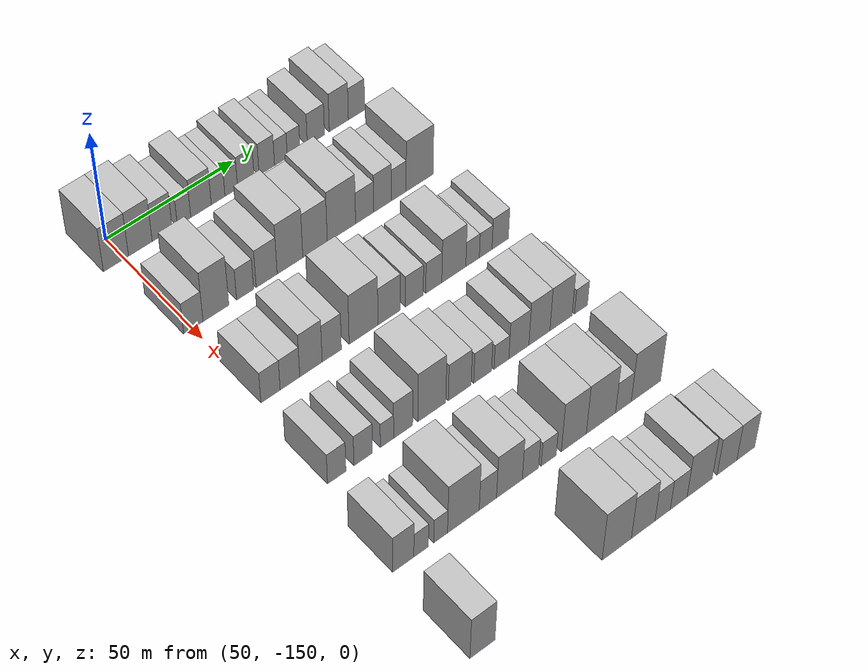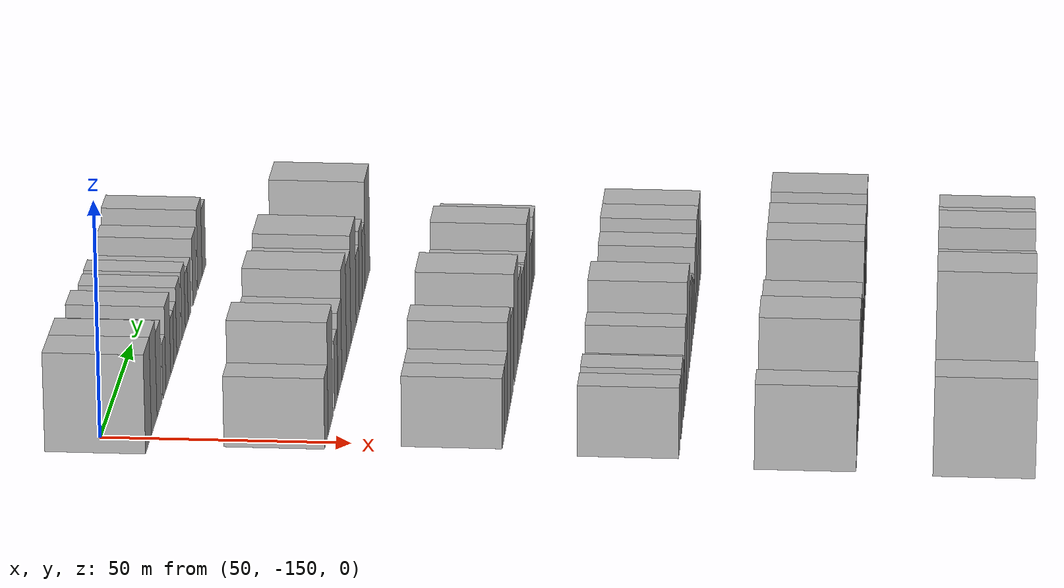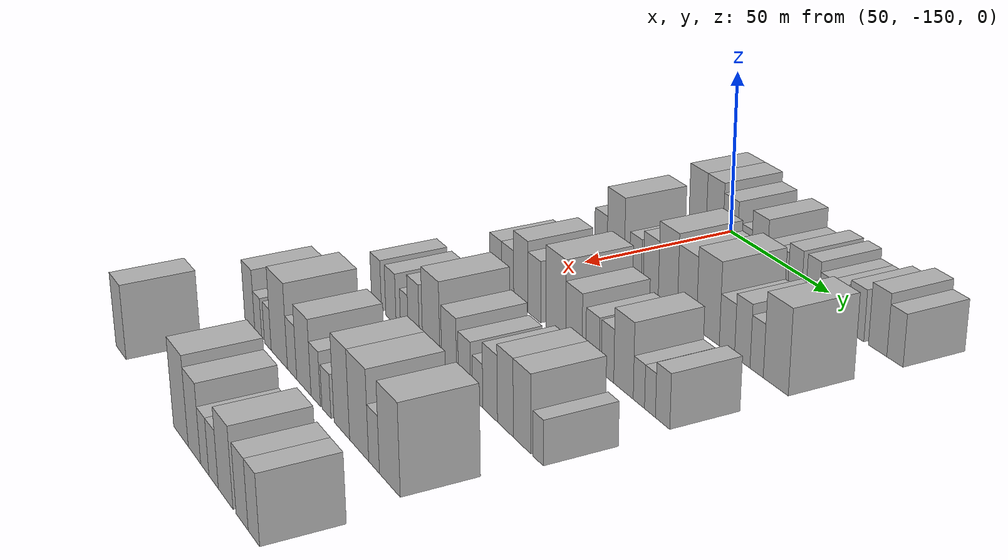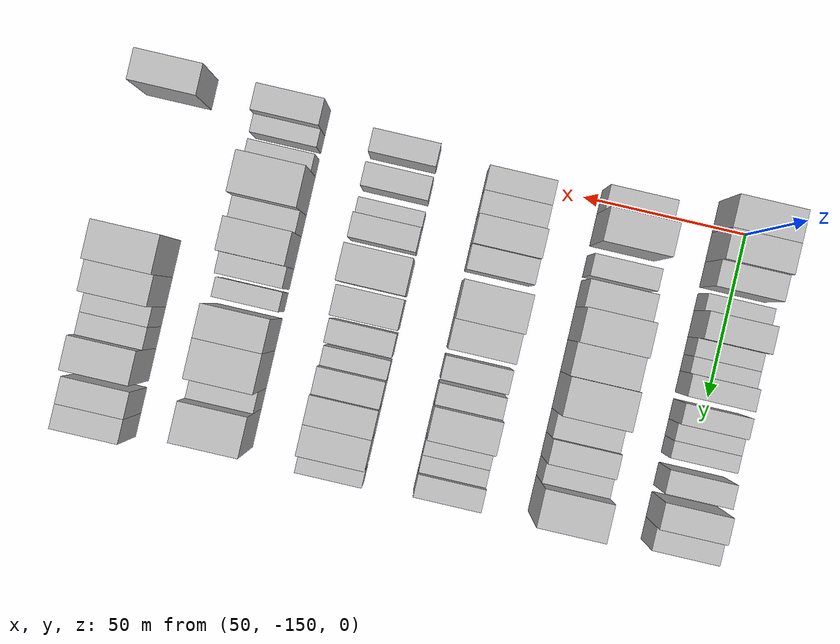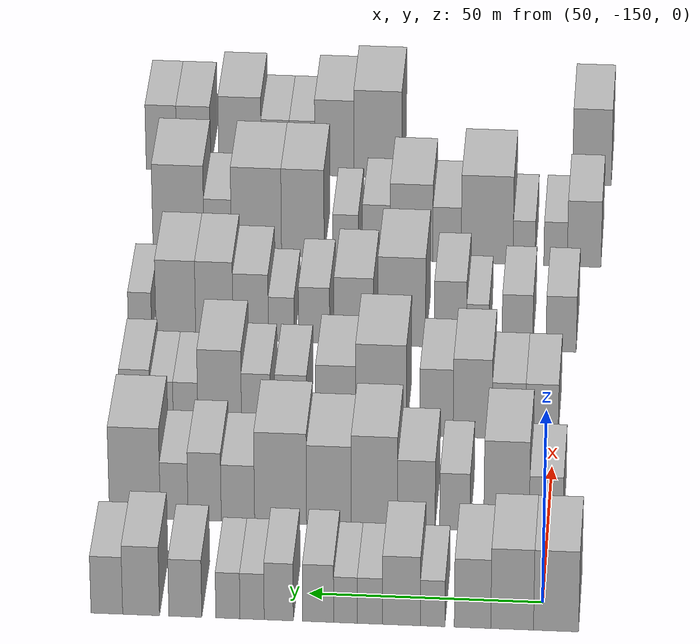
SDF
<sdf version="1.6">
 <world name="default">
  <model name="building_46">
   <static>1</static>
   <pose>50.0000 -153.2231 0 0.000000 0.000000 0.000000</pose>
   <link name="link">
    <pose>0 0 10.50 0 0 0</pose>
    <collision name="collision"><geometry><box><size>20.0000 9.5921 21.0000</size></box></geometry></collision>
    <visual name="visual">
     <cast_shadows>0</cast_shadows>
     <geometry><box><size>20.0000 9.5921 21.0000</size></box></geometry>
     <material>
      <script>
       <uri>model://HANNAS_wall/materials/scripts</uri>
       <uri>model://HANNAS_wall/materials/textures</uri>
       <name>vrc/HANNAS_wall</name>
      </script>
     </material>
    </visual>
   </link>
  </model>
  <model name="building_47">
   <static>1</static>
   <pose>50.0000 -143.8796 0 0.000000 0.000000 0.000000</pose>
   <link name="link">
    <pose>0 0 10.50 0 0 0</pose>
    <collision name="collision"><geometry><box><size>20.0000 9.0949 21.0000</size></box></geometry></collision>
    <visual name="visual">
     <cast_shadows>0</cast_shadows>
     <geometry><box><size>20.0000 9.0949 21.0000</size></box></geometry>
     <material>
      <script>
       <uri>model://HANNAS_wall/materials/scripts</uri>
       <uri>model://HANNAS_wall/materials/textures</uri>
       <name>vrc/HANNAS_wall</name>
      </script>
     </material>
    </visual>
   </link>
  </model>
  <model name="building_48">
   <static>1</static>
   <pose>50.0000 -135.4511 0 0.000000 0.000000 0.000000</pose>
   <link name="link">
    <pose>0 0 9.00 0 0 0</pose>
    <collision name="collision"><geometry><box><size>20.0000 7.7621 18.0000</size></box></geometry></collision>
    <visual name="visual">
     <cast_shadows>0</cast_shadows>
     <geometry><box><size>20.0000 7.7621 18.0000</size></box></geometry>
     <material>
      <script>
       <uri>model://HANNAS_wall/materials/scripts</uri>
       <uri>model://HANNAS_wall/materials/textures</uri>
       <name>vrc/HANNAS_wall</name>
      </script>
     </material>
    </visual>
   </link>
  </model>
  <model name="building_49">
   <static>1</static>
   <pose>50.0000 -126.9528 0 0.000000 0.000000 0.000000</pose>
   <link name="link">
    <pose>0 0 6.00 0 0 0</pose>
    <collision name="collision"><geometry><box><size>20.0000 5.2345 12.0000</size></box></geometry></collision>
    <visual name="visual">
     <cast_shadows>0</cast_shadows>
     <geometry><box><size>20.0000 5.2345 12.0000</size></box></geometry>
     <material>
      <script>
       <uri>model://HANNAS_wall/materials/scripts</uri>
       <uri>model://HANNAS_wall/materials/textures</uri>
       <name>vrc/HANNAS_wall</name>
      </script>
     </material>
    </visual>
   </link>
  </model>
  <model name="building_50">
   <static>1</static>
   <pose>50.0000 -120.3016 0 0.000000 0.000000 0.000000</pose>
   <link name="link">
    <pose>0 0 9.00 0 0 0</pose>
    <collision name="collision"><geometry><box><size>20.0000 8.0678 18.0000</size></box></geometry></collision>
    <visual name="visual">
     <cast_shadows>0</cast_shadows>
     <geometry><box><size>20.0000 8.0678 18.0000</size></box></geometry>
     <material>
      <script>
       <uri>model://HANNAS_wall/materials/scripts</uri>
       <uri>model://HANNAS_wall/materials/textures</uri>
       <name>vrc/HANNAS_wall</name>
      </script>
     </material>
    </visual>
   </link>
  </model>
  <model name="building_51">
   <static>1</static>
   <pose>50.0000 -113.5602 0 0.000000 0.000000 0.000000</pose>
   <link name="link">
    <pose>0 0 6.00 0 0 0</pose>
    <collision name="collision"><geometry><box><size>20.0000 5.4152 12.0000</size></box></geometry></collision>
    <visual name="visual">
     <cast_shadows>0</cast_shadows>
     <geometry><box><size>20.0000 5.4152 12.0000</size></box></geometry>
     <material>
      <script>
       <uri>model://HANNAS_wall/materials/scripts</uri>
       <uri>model://HANNAS_wall/materials/textures</uri>
       <name>vrc/HANNAS_wall</name>
      </script>
     </material>
    </visual>
   </link>
  </model>
  <model name="building_52">
   <static>1</static>
   <pose>50.0000 -108.3492 0 0.000000 0.000000 0.000000</pose>
   <link name="link">
    <pose>0 0 6.00 0 0 0</pose>
    <collision name="collision"><geometry><box><size>20.0000 5.0068 12.0000</size></box></geometry></collision>
    <visual name="visual">
     <cast_shadows>0</cast_shadows>
     <geometry><box><size>20.0000 5.0068 12.0000</size></box></geometry>
     <material>
      <script>
       <uri>model://HANNAS_wall/materials/scripts</uri>
       <uri>model://HANNAS_wall/materials/textures</uri>
       <name>vrc/HANNAS_wall</name>
      </script>
     </material>
    </visual>
   </link>
  </model>
  <model name="building_53">
   <static>1</static>
   <pose>50.0000 -102.5391 0 0.000000 0.000000 0.000000</pose>
   <link name="link">
    <pose>0 0 7.50 0 0 0</pose>
    <collision name="collision"><geometry><box><size>20.0000 6.6133 15.0000</size></box></geometry></collision>
    <visual name="visual">
     <cast_shadows>0</cast_shadows>
     <geometry><box><size>20.0000 6.6133 15.0000</size></box></geometry>
     <material>
      <script>
       <uri>model://HANNAS_wall/materials/scripts</uri>
       <uri>model://HANNAS_wall/materials/textures</uri>
       <name>vrc/HANNAS_wall</name>
      </script>
     </material>
    </visual>
   </link>
  </model>
  <model name="building_54">
   <static>1</static>
   <pose>50.0000 -94.1244 0 0.000000 0.000000 0.000000</pose>
   <link name="link">
    <pose>0 0 7.50 0 0 0</pose>
    <collision name="collision"><geometry><box><size>20.0000 6.2161 15.0000</size></box></geometry></collision>
    <visual name="visual">
     <cast_shadows>0</cast_shadows>
     <geometry><box><size>20.0000 6.2161 15.0000</size></box></geometry>
     <material>
      <script>
       <uri>model://HANNAS_wall/materials/scripts</uri>
       <uri>model://HANNAS_wall/materials/textures</uri>
       <name>vrc/HANNAS_wall</name>
      </script>
     </material>
    </visual>
   </link>
  </model>
  <model name="building_55">
   <static>1</static>
   <pose>50.0000 -88.4312 0 0.000000 0.000000 0.000000</pose>
   <link name="link">
    <pose>0 0 6.00 0 0 0</pose>
    <collision name="collision"><geometry><box><size>20.0000 5.1702 12.0000</size></box></geometry></collision>
    <visual name="visual">
     <cast_shadows>0</cast_shadows>
     <geometry><box><size>20.0000 5.1702 12.0000</size></box></geometry>
     <material>
      <script>
       <uri>model://HANNAS_wall/materials/scripts</uri>
       <uri>model://HANNAS_wall/materials/textures</uri>
       <name>vrc/HANNAS_wall</name>
      </script>
     </material>
    </visual>
   </link>
  </model>
  <model name="building_56">
   <static>1</static>
   <pose>50.0000 -83.2639 0 0.000000 0.000000 0.000000</pose>
   <link name="link">
    <pose>0 0 6.00 0 0 0</pose>
    <collision name="collision"><geometry><box><size>20.0000 5.1645 12.0000</size></box></geometry></collision>
    <visual name="visual">
     <cast_shadows>0</cast_shadows>
     <geometry><box><size>20.0000 5.1645 12.0000</size></box></geometry>
     <material>
      <script>
       <uri>model://HANNAS_wall/materials/scripts</uri>
       <uri>model://HANNAS_wall/materials/textures</uri>
       <name>vrc/HANNAS_wall</name>
      </script>
     </material>
    </visual>
   </link>
  </model>
  <model name="building_57">
   <static>1</static>
   <pose>50.0000 -74.1556 0 0.000000 0.000000 0.000000</pose>
   <link name="link">
    <pose>0 0 7.50 0 0 0</pose>
    <collision name="collision"><geometry><box><size>20.0000 7.0520 15.0000</size></box></geometry></collision>
    <visual name="visual">
     <cast_shadows>0</cast_shadows>
     <geometry><box><size>20.0000 7.0520 15.0000</size></box></geometry>
     <material>
      <script>
       <uri>model://HANNAS_wall/materials/scripts</uri>
       <uri>model://HANNAS_wall/materials/textures</uri>
       <name>vrc/HANNAS_wall</name>
      </script>
     </material>
    </visual>
   </link>
  </model>
  <model name="building_58">
   <static>1</static>
   <pose>50.0000 -64.6822 0 0.000000 0.000000 0.000000</pose>
   <link name="link">
    <pose>0 0 9.00 0 0 0</pose>
    <collision name="collision"><geometry><box><size>20.0000 7.8949 18.0000</size></box></geometry></collision>
    <visual name="visual">
     <cast_shadows>0</cast_shadows>
     <geometry><box><size>20.0000 7.8949 18.0000</size></box></geometry>
     <material>
      <script>
       <uri>model://HANNAS_wall/materials/scripts</uri>
       <uri>model://HANNAS_wall/materials/textures</uri>
       <name>vrc/HANNAS_wall</name>
      </script>
     </material>
    </visual>
   </link>
  </model>
  <model name="building_59">
   <static>1</static>
   <pose>50.0000 -57.3447 0 0.000000 0.000000 0.000000</pose>
   <link name="link">
    <pose>0 0 7.50 0 0 0</pose>
    <collision name="collision"><geometry><box><size>20.0000 6.7800 15.0000</size></box></geometry></collision>
    <visual name="visual">
     <cast_shadows>0</cast_shadows>
     <geometry><box><size>20.0000 6.7800 15.0000</size></box></geometry>
     <material>
      <script>
       <uri>model://HANNAS_wall/materials/scripts</uri>
       <uri>model://HANNAS_wall/materials/textures</uri>
       <name>vrc/HANNAS_wall</name>
      </script>
     </material>
    </visual>
   </link>
  </model>
  <model name="building_173">
   <static>1</static>
   <pose>85.0000 -149.6448 0 0.000000 0.000000 0.000000</pose>
   <link name="link">
    <pose>0 0 7.50 0 0 0</pose>
    <collision name="collision"><geometry><box><size>20.0000 7.3436 15.0000</size></box></geometry></collision>
    <visual name="visual">
     <cast_shadows>0</cast_shadows>
     <geometry><box><size>20.0000 7.3436 15.0000</size></box></geometry>
     <material>
      <script>
       <uri>model://HANNAS_wall/materials/scripts</uri>
       <uri>model://HANNAS_wall/materials/textures</uri>
       <name>vrc/HANNAS_wall</name>
      </script>
     </material>
    </visual>
   </link>
  </model>
  <model name="building_174">
   <static>1</static>
   <pose>85.0000 -141.0411 0 0.000000 0.000000 0.000000</pose>
   <link name="link">
    <pose>0 0 12.00 0 0 0</pose>
    <collision name="collision"><geometry><box><size>20.0000 9.8637 24.0000</size></box></geometry></collision>
    <visual name="visual">
     <cast_shadows>0</cast_shadows>
     <geometry><box><size>20.0000 9.8637 24.0000</size></box></geometry>
     <material>
      <script>
       <uri>model://HANNAS_wall/materials/scripts</uri>
       <uri>model://HANNAS_wall/materials/textures</uri>
       <name>vrc/HANNAS_wall</name>
      </script>
     </material>
    </visual>
   </link>
  </model>
  <model name="building_175">
   <static>1</static>
   <pose>85.0000 -129.8252 0 0.000000 0.000000 0.000000</pose>
   <link name="link">
    <pose>0 0 7.50 0 0 0</pose>
    <collision name="collision"><geometry><box><size>20.0000 6.5681 15.0000</size></box></geometry></collision>
    <visual name="visual">
     <cast_shadows>0</cast_shadows>
     <geometry><box><size>20.0000 6.5681 15.0000</size></box></geometry>
     <material>
      <script>
       <uri>model://HANNAS_wall/materials/scripts</uri>
       <uri>model://HANNAS_wall/materials/textures</uri>
       <name>vrc/HANNAS_wall</name>
      </script>
     </material>
    </visual>
   </link>
  </model>
  <model name="building_176">
   <static>1</static>
   <pose>85.0000 -121.4539 0 0.000000 0.000000 0.000000</pose>
   <link name="link">
    <pose>0 0 9.00 0 0 0</pose>
    <collision name="collision"><geometry><box><size>20.0000 8.1746 18.0000</size></box></geometry></collision>
    <visual name="visual">
     <cast_shadows>0</cast_shadows>
     <geometry><box><size>20.0000 8.1746 18.0000</size></box></geometry>
     <material>
      <script>
       <uri>model://HANNAS_wall/materials/scripts</uri>
       <uri>model://HANNAS_wall/materials/textures</uri>
       <name>vrc/HANNAS_wall</name>
      </script>
     </material>
    </visual>
   </link>
  </model>
  <model name="building_177">
   <static>1</static>
   <pose>85.0000 -112.3186 0 0.000000 0.000000 0.000000</pose>
   <link name="link">
    <pose>0 0 12.00 0 0 0</pose>
    <collision name="collision"><geometry><box><size>20.0000 10.0960 24.0000</size></box></geometry></collision>
    <visual name="visual">
     <cast_shadows>0</cast_shadows>
     <geometry><box><size>20.0000 10.0960 24.0000</size></box></geometry>
     <material>
      <script>
       <uri>model://HANNAS_wall/materials/scripts</uri>
       <uri>model://HANNAS_wall/materials/textures</uri>
       <name>vrc/HANNAS_wall</name>
      </script>
     </material>
    </visual>
   </link>
  </model>
  <model name="building_178">
   <static>1</static>
   <pose>85.0000 -102.4097 0 0.000000 0.000000 0.000000</pose>
   <link name="link">
    <pose>0 0 10.50 0 0 0</pose>
    <collision name="collision"><geometry><box><size>20.0000 9.7217 21.0000</size></box></geometry></collision>
    <visual name="visual">
     <cast_shadows>0</cast_shadows>
     <geometry><box><size>20.0000 9.7217 21.0000</size></box></geometry>
     <material>
      <script>
       <uri>model://HANNAS_wall/materials/scripts</uri>
       <uri>model://HANNAS_wall/materials/textures</uri>
       <name>vrc/HANNAS_wall</name>
      </script>
     </material>
    </visual>
   </link>
  </model>
  <model name="building_179">
   <static>1</static>
   <pose>85.0000 -91.8756 0 0.000000 0.000000 0.000000</pose>
   <link name="link">
    <pose>0 0 12.00 0 0 0</pose>
    <collision name="collision"><geometry><box><size>20.0000 11.3465 24.0000</size></box></geometry></collision>
    <visual name="visual">
     <cast_shadows>0</cast_shadows>
     <geometry><box><size>20.0000 11.3465 24.0000</size></box></geometry>
     <material>
      <script>
       <uri>model://HANNAS_wall/materials/scripts</uri>
       <uri>model://HANNAS_wall/materials/textures</uri>
       <name>vrc/HANNAS_wall</name>
      </script>
     </material>
    </visual>
   </link>
  </model>
  <model name="building_180">
   <static>1</static>
   <pose>85.0000 -82.5604 0 0.000000 0.000000 0.000000</pose>
   <link name="link">
    <pose>0 0 7.50 0 0 0</pose>
    <collision name="collision"><geometry><box><size>20.0000 7.2840 15.0000</size></box></geometry></collision>
    <visual name="visual">
     <cast_shadows>0</cast_shadows>
     <geometry><box><size>20.0000 7.2840 15.0000</size></box></geometry>
     <material>
      <script>
       <uri>model://HANNAS_wall/materials/scripts</uri>
       <uri>model://HANNAS_wall/materials/textures</uri>
       <name>vrc/HANNAS_wall</name>
      </script>
     </material>
    </visual>
   </link>
  </model>
  <model name="building_181">
   <static>1</static>
   <pose>85.0000 -75.2940 0 0.000000 0.000000 0.000000</pose>
   <link name="link">
    <pose>0 0 9.00 0 0 0</pose>
    <collision name="collision"><geometry><box><size>20.0000 7.2488 18.0000</size></box></geometry></collision>
    <visual name="visual">
     <cast_shadows>0</cast_shadows>
     <geometry><box><size>20.0000 7.2488 18.0000</size></box></geometry>
     <material>
      <script>
       <uri>model://HANNAS_wall/materials/scripts</uri>
       <uri>model://HANNAS_wall/materials/textures</uri>
       <name>vrc/HANNAS_wall</name>
      </script>
     </material>
    </visual>
   </link>
  </model>
  <model name="building_182">
   <static>1</static>
   <pose>85.0000 -68.6359 0 0.000000 0.000000 0.000000</pose>
   <link name="link">
    <pose>0 0 7.50 0 0 0</pose>
    <collision name="collision"><geometry><box><size>20.0000 6.0674 15.0000</size></box></geometry></collision>
    <visual name="visual">
     <cast_shadows>0</cast_shadows>
     <geometry><box><size>20.0000 6.0674 15.0000</size></box></geometry>
     <material>
      <script>
       <uri>model://HANNAS_wall/materials/scripts</uri>
       <uri>model://HANNAS_wall/materials/textures</uri>
       <name>vrc/HANNAS_wall</name>
      </script>
     </material>
    </visual>
   </link>
  </model>
  <model name="building_183">
   <static>1</static>
   <pose>85.0000 -60.0396 0 0.000000 0.000000 0.000000</pose>
   <link name="link">
    <pose>0 0 12.00 0 0 0</pose>
    <collision name="collision"><geometry><box><size>20.0000 11.1253 24.0000</size></box></geometry></collision>
    <visual name="visual">
     <cast_shadows>0</cast_shadows>
     <geometry><box><size>20.0000 11.1253 24.0000</size></box></geometry>
     <material>
      <script>
       <uri>model://HANNAS_wall/materials/scripts</uri>
       <uri>model://HANNAS_wall/materials/textures</uri>
       <name>vrc/HANNAS_wall</name>
      </script>
     </material>
    </visual>
   </link>
  </model>
  <model name="building_298">
   <static>1</static>
   <pose>120.0000 -147.2868 0 0.000000 0.000000 0.000000</pose>
   <link name="link">
    <pose>0 0 7.50 0 0 0</pose>
    <collision name="collision"><geometry><box><size>20.0000 7.2718 15.0000</size></box></geometry></collision>
    <visual name="visual">
     <cast_shadows>0</cast_shadows>
     <geometry><box><size>20.0000 7.2718 15.0000</size></box></geometry>
     <material>
      <script>
       <uri>model://HANNAS_wall/materials/scripts</uri>
       <uri>model://HANNAS_wall/materials/textures</uri>
       <name>vrc/HANNAS_wall</name>
      </script>
     </material>
    </visual>
   </link>
  </model>
  <model name="building_299">
   <static>1</static>
   <pose>120.0000 -139.9324 0 0.000000 0.000000 0.000000</pose>
   <link name="link">
    <pose>0 0 7.50 0 0 0</pose>
    <collision name="collision"><geometry><box><size>20.0000 7.4371 15.0000</size></box></geometry></collision>
    <visual name="visual">
     <cast_shadows>0</cast_shadows>
     <geometry><box><size>20.0000 7.4371 15.0000</size></box></geometry>
     <material>
      <script>
       <uri>model://HANNAS_wall/materials/scripts</uri>
       <uri>model://HANNAS_wall/materials/textures</uri>
       <name>vrc/HANNAS_wall</name>
      </script>
     </material>
    </visual>
   </link>
  </model>
  <model name="building_300">
   <static>1</static>
   <pose>120.0000 -131.9129 0 0.000000 0.000000 0.000000</pose>
   <link name="link">
    <pose>0 0 10.50 0 0 0</pose>
    <collision name="collision"><geometry><box><size>20.0000 8.6019 21.0000</size></box></geometry></collision>
    <visual name="visual">
     <cast_shadows>0</cast_shadows>
     <geometry><box><size>20.0000 8.6019 21.0000</size></box></geometry>
     <material>
      <script>
       <uri>model://HANNAS_wall/materials/scripts</uri>
       <uri>model://HANNAS_wall/materials/textures</uri>
       <name>vrc/HANNAS_wall</name>
      </script>
     </material>
    </visual>
   </link>
  </model>
  <model name="building_301">
   <static>1</static>
   <pose>120.0000 -123.8991 0 0.000000 0.000000 0.000000</pose>
   <link name="link">
    <pose>0 0 9.00 0 0 0</pose>
    <collision name="collision"><geometry><box><size>20.0000 7.4257 18.0000</size></box></geometry></collision>
    <visual name="visual">
     <cast_shadows>0</cast_shadows>
     <geometry><box><size>20.0000 7.4257 18.0000</size></box></geometry>
     <material>
      <script>
       <uri>model://HANNAS_wall/materials/scripts</uri>
       <uri>model://HANNAS_wall/materials/textures</uri>
       <name>vrc/HANNAS_wall</name>
      </script>
     </material>
    </visual>
   </link>
  </model>
  <model name="building_302">
   <static>1</static>
   <pose>120.0000 -111.5586 0 0.000000 0.000000 0.000000</pose>
   <link name="link">
    <pose>0 0 12.00 0 0 0</pose>
    <collision name="collision"><geometry><box><size>20.0000 11.2554 24.0000</size></box></geometry></collision>
    <visual name="visual">
     <cast_shadows>0</cast_shadows>
     <geometry><box><size>20.0000 11.2554 24.0000</size></box></geometry>
     <material>
      <script>
       <uri>model://HANNAS_wall/materials/scripts</uri>
       <uri>model://HANNAS_wall/materials/textures</uri>
       <name>vrc/HANNAS_wall</name>
      </script>
     </material>
    </visual>
   </link>
  </model>
  <model name="building_303">
   <static>1</static>
   <pose>120.0000 -101.4931 0 0.000000 0.000000 0.000000</pose>
   <link name="link">
    <pose>0 0 9.00 0 0 0</pose>
    <collision name="collision"><geometry><box><size>20.0000 8.8756 18.0000</size></box></geometry></collision>
    <visual name="visual">
     <cast_shadows>0</cast_shadows>
     <geometry><box><size>20.0000 8.8756 18.0000</size></box></geometry>
     <material>
      <script>
       <uri>model://HANNAS_wall/materials/scripts</uri>
       <uri>model://HANNAS_wall/materials/textures</uri>
       <name>vrc/HANNAS_wall</name>
      </script>
     </material>
    </visual>
   </link>
  </model>
  <model name="building_304">
   <static>1</static>
   <pose>120.0000 -91.5124 0 0.000000 0.000000 0.000000</pose>
   <link name="link">
    <pose>0 0 7.50 0 0 0</pose>
    <collision name="collision"><geometry><box><size>20.0000 7.0858 15.0000</size></box></geometry></collision>
    <visual name="visual">
     <cast_shadows>0</cast_shadows>
     <geometry><box><size>20.0000 7.0858 15.0000</size></box></geometry>
     <material>
      <script>
       <uri>model://HANNAS_wall/materials/scripts</uri>
       <uri>model://HANNAS_wall/materials/textures</uri>
       <name>vrc/HANNAS_wall</name>
      </script>
     </material>
    </visual>
   </link>
  </model>
  <model name="building_305">
   <static>1</static>
   <pose>120.0000 -83.7449 0 0.000000 0.000000 0.000000</pose>
   <link name="link">
    <pose>0 0 7.50 0 0 0</pose>
    <collision name="collision"><geometry><box><size>20.0000 6.4491 15.0000</size></box></geometry></collision>
    <visual name="visual">
     <cast_shadows>0</cast_shadows>
     <geometry><box><size>20.0000 6.4491 15.0000</size></box></geometry>
     <material>
      <script>
       <uri>model://HANNAS_wall/materials/scripts</uri>
       <uri>model://HANNAS_wall/materials/textures</uri>
       <name>vrc/HANNAS_wall</name>
      </script>
     </material>
    </visual>
   </link>
  </model>
  <model name="building_306">
   <static>1</static>
   <pose>120.0000 -75.6520 0 0.000000 0.000000 0.000000</pose>
   <link name="link">
    <pose>0 0 10.50 0 0 0</pose>
    <collision name="collision"><geometry><box><size>20.0000 9.7367 21.0000</size></box></geometry></collision>
    <visual name="visual">
     <cast_shadows>0</cast_shadows>
     <geometry><box><size>20.0000 9.7367 21.0000</size></box></geometry>
     <material>
      <script>
       <uri>model://HANNAS_wall/materials/scripts</uri>
       <uri>model://HANNAS_wall/materials/textures</uri>
       <name>vrc/HANNAS_wall</name>
      </script>
     </material>
    </visual>
   </link>
  </model>
  <model name="building_307">
   <static>1</static>
   <pose>120.0000 -68.0322 0 0.000000 0.000000 0.000000</pose>
   <link name="link">
    <pose>0 0 6.00 0 0 0</pose>
    <collision name="collision"><geometry><box><size>20.0000 5.5030 12.0000</size></box></geometry></collision>
    <visual name="visual">
     <cast_shadows>0</cast_shadows>
     <geometry><box><size>20.0000 5.5030 12.0000</size></box></geometry>
     <material>
      <script>
       <uri>model://HANNAS_wall/materials/scripts</uri>
       <uri>model://HANNAS_wall/materials/textures</uri>
       <name>vrc/HANNAS_wall</name>
      </script>
     </material>
    </visual>
   </link>
  </model>
  <model name="building_308">
   <static>1</static>
   <pose>120.0000 -62.6818 0 0.000000 0.000000 0.000000</pose>
   <link name="link">
    <pose>0 0 6.00 0 0 0</pose>
    <collision name="collision"><geometry><box><size>20.0000 5.1977 12.0000</size></box></geometry></collision>
    <visual name="visual">
     <cast_shadows>0</cast_shadows>
     <geometry><box><size>20.0000 5.1977 12.0000</size></box></geometry>
     <material>
      <script>
       <uri>model://HANNAS_wall/materials/scripts</uri>
       <uri>model://HANNAS_wall/materials/textures</uri>
       <name>vrc/HANNAS_wall</name>
      </script>
     </material>
    </visual>
   </link>
  </model>
  <model name="building_309">
   <static>1</static>
   <pose>120.0000 -56.7090 0 0.000000 0.000000 0.000000</pose>
   <link name="link">
    <pose>0 0 7.50 0 0 0</pose>
    <collision name="collision"><geometry><box><size>20.0000 6.7481 15.0000</size></box></geometry></collision>
    <visual name="visual">
     <cast_shadows>0</cast_shadows>
     <geometry><box><size>20.0000 6.7481 15.0000</size></box></geometry>
     <material>
      <script>
       <uri>model://HANNAS_wall/materials/scripts</uri>
       <uri>model://HANNAS_wall/materials/textures</uri>
       <name>vrc/HANNAS_wall</name>
      </script>
     </material>
    </visual>
   </link>
  </model>
  <model name="building_421">
   <static>1</static>
   <pose>155.0000 -150.2402 0 0.000000 0.000000 0.000000</pose>
   <link name="link">
    <pose>0 0 7.50 0 0 0</pose>
    <collision name="collision"><geometry><box><size>20.0000 6.8778 15.0000</size></box></geometry></collision>
    <visual name="visual">
     <cast_shadows>0</cast_shadows>
     <geometry><box><size>20.0000 6.8778 15.0000</size></box></geometry>
     <material>
      <script>
       <uri>model://HANNAS_wall/materials/scripts</uri>
       <uri>model://HANNAS_wall/materials/textures</uri>
       <name>vrc/HANNAS_wall</name>
      </script>
     </material>
    </visual>
   </link>
  </model>
  <model name="building_422">
   <static>1</static>
   <pose>155.0000 -140.3167 0 0.000000 0.000000 0.000000</pose>
   <link name="link">
    <pose>0 0 7.50 0 0 0</pose>
    <collision name="collision"><geometry><box><size>20.0000 6.9691 15.0000</size></box></geometry></collision>
    <visual name="visual">
     <cast_shadows>0</cast_shadows>
     <geometry><box><size>20.0000 6.9691 15.0000</size></box></geometry>
     <material>
      <script>
       <uri>model://HANNAS_wall/materials/scripts</uri>
       <uri>model://HANNAS_wall/materials/textures</uri>
       <name>vrc/HANNAS_wall</name>
      </script>
     </material>
    </visual>
   </link>
  </model>
  <model name="building_423">
   <static>1</static>
   <pose>155.0000 -131.3008 0 0.000000 0.000000 0.000000</pose>
   <link name="link">
    <pose>0 0 6.00 0 0 0</pose>
    <collision name="collision"><geometry><box><size>20.0000 5.0627 12.0000</size></box></geometry></collision>
    <visual name="visual">
     <cast_shadows>0</cast_shadows>
     <geometry><box><size>20.0000 5.0627 12.0000</size></box></geometry>
     <material>
      <script>
       <uri>model://HANNAS_wall/materials/scripts</uri>
       <uri>model://HANNAS_wall/materials/textures</uri>
       <name>vrc/HANNAS_wall</name>
      </script>
     </material>
    </visual>
   </link>
  </model>
  <model name="building_424">
   <static>1</static>
   <pose>155.0000 -125.1274 0 0.000000 0.000000 0.000000</pose>
   <link name="link">
    <pose>0 0 9.00 0 0 0</pose>
    <collision name="collision"><geometry><box><size>20.0000 7.2842 18.0000</size></box></geometry></collision>
    <visual name="visual">
     <cast_shadows>0</cast_shadows>
     <geometry><box><size>20.0000 7.2842 18.0000</size></box></geometry>
     <material>
      <script>
       <uri>model://HANNAS_wall/materials/scripts</uri>
       <uri>model://HANNAS_wall/materials/textures</uri>
       <name>vrc/HANNAS_wall</name>
      </script>
     </material>
    </visual>
   </link>
  </model>
  <model name="building_425">
   <static>1</static>
   <pose>155.0000 -114.0852 0 0.000000 0.000000 0.000000</pose>
   <link name="link">
    <pose>0 0 12.00 0 0 0</pose>
    <collision name="collision"><geometry><box><size>20.0000 10.8000 24.0000</size></box></geometry></collision>
    <visual name="visual">
     <cast_shadows>0</cast_shadows>
     <geometry><box><size>20.0000 10.8000 24.0000</size></box></geometry>
     <material>
      <script>
       <uri>model://HANNAS_wall/materials/scripts</uri>
       <uri>model://HANNAS_wall/materials/textures</uri>
       <name>vrc/HANNAS_wall</name>
      </script>
     </material>
    </visual>
   </link>
  </model>
  <model name="building_426">
   <static>1</static>
   <pose>155.0000 -103.2085 0 0.000000 0.000000 0.000000</pose>
   <link name="link">
    <pose>0 0 9.00 0 0 0</pose>
    <collision name="collision"><geometry><box><size>20.0000 8.9534 18.0000</size></box></geometry></collision>
    <visual name="visual">
     <cast_shadows>0</cast_shadows>
     <geometry><box><size>20.0000 8.9534 18.0000</size></box></geometry>
     <material>
      <script>
       <uri>model://HANNAS_wall/materials/scripts</uri>
       <uri>model://HANNAS_wall/materials/textures</uri>
       <name>vrc/HANNAS_wall</name>
      </script>
     </material>
    </visual>
   </link>
  </model>
  <model name="building_427">
   <static>1</static>
   <pose>155.0000 -94.1930 0 0.000000 0.000000 0.000000</pose>
   <link name="link">
    <pose>0 0 7.50 0 0 0</pose>
    <collision name="collision"><geometry><box><size>20.0000 7.0775 15.0000</size></box></geometry></collision>
    <visual name="visual">
     <cast_shadows>0</cast_shadows>
     <geometry><box><size>20.0000 7.0775 15.0000</size></box></geometry>
     <material>
      <script>
       <uri>model://HANNAS_wall/materials/scripts</uri>
       <uri>model://HANNAS_wall/materials/textures</uri>
       <name>vrc/HANNAS_wall</name>
      </script>
     </material>
    </visual>
   </link>
  </model>
  <model name="building_428">
   <static>1</static>
   <pose>155.0000 -86.7264 0 0.000000 0.000000 0.000000</pose>
   <link name="link">
    <pose>0 0 6.00 0 0 0</pose>
    <collision name="collision"><geometry><box><size>20.0000 5.8557 12.0000</size></box></geometry></collision>
    <visual name="visual">
     <cast_shadows>0</cast_shadows>
     <geometry><box><size>20.0000 5.8557 12.0000</size></box></geometry>
     <material>
      <script>
       <uri>model://HANNAS_wall/materials/scripts</uri>
       <uri>model://HANNAS_wall/materials/textures</uri>
       <name>vrc/HANNAS_wall</name>
      </script>
     </material>
    </visual>
   </link>
  </model>
  <model name="building_429">
   <static>1</static>
   <pose>155.0000 -79.7750 0 0.000000 0.000000 0.000000</pose>
   <link name="link">
    <pose>0 0 9.00 0 0 0</pose>
    <collision name="collision"><geometry><box><size>20.0000 8.0472 18.0000</size></box></geometry></collision>
    <visual name="visual">
     <cast_shadows>0</cast_shadows>
     <geometry><box><size>20.0000 8.0472 18.0000</size></box></geometry>
     <material>
      <script>
       <uri>model://HANNAS_wall/materials/scripts</uri>
       <uri>model://HANNAS_wall/materials/textures</uri>
       <name>vrc/HANNAS_wall</name>
      </script>
     </material>
    </visual>
   </link>
  </model>
  <model name="building_430">
   <static>1</static>
   <pose>155.0000 -71.4947 0 0.000000 0.000000 0.000000</pose>
   <link name="link">
    <pose>0 0 10.50 0 0 0</pose>
    <collision name="collision"><geometry><box><size>20.0000 8.5134 21.0000</size></box></geometry></collision>
    <visual name="visual">
     <cast_shadows>0</cast_shadows>
     <geometry><box><size>20.0000 8.5134 21.0000</size></box></geometry>
     <material>
      <script>
       <uri>model://HANNAS_wall/materials/scripts</uri>
       <uri>model://HANNAS_wall/materials/textures</uri>
       <name>vrc/HANNAS_wall</name>
      </script>
     </material>
    </visual>
   </link>
  </model>
  <model name="building_431">
   <static>1</static>
   <pose>155.0000 -62.7119 0 0.000000 0.000000 0.000000</pose>
   <link name="link">
    <pose>0 0 10.50 0 0 0</pose>
    <collision name="collision"><geometry><box><size>20.0000 9.0521 21.0000</size></box></geometry></collision>
    <visual name="visual">
     <cast_shadows>0</cast_shadows>
     <geometry><box><size>20.0000 9.0521 21.0000</size></box></geometry>
     <material>
      <script>
       <uri>model://HANNAS_wall/materials/scripts</uri>
       <uri>model://HANNAS_wall/materials/textures</uri>
       <name>vrc/HANNAS_wall</name>
      </script>
     </material>
    </visual>
   </link>
  </model>
  <model name="building_432">
   <static>1</static>
   <pose>155.0000 -54.5400 0 0.000000 0.000000 0.000000</pose>
   <link name="link">
    <pose>0 0 6.00 0 0 0</pose>
    <collision name="collision"><geometry><box><size>20.0000 5.2918 12.0000</size></box></geometry></collision>
    <visual name="visual">
     <cast_shadows>0</cast_shadows>
     <geometry><box><size>20.0000 5.2918 12.0000</size></box></geometry>
     <material>
      <script>
       <uri>model://HANNAS_wall/materials/scripts</uri>
       <uri>model://HANNAS_wall/materials/textures</uri>
       <name>vrc/HANNAS_wall</name>
      </script>
     </material>
    </visual>
   </link>
  </model>
  <model name="building_551">
   <static>1</static>
   <pose>190.0000 -154.2169 0 0.000000 0.000000 0.000000</pose>
   <link name="link">
    <pose>0 0 9.00 0 0 0</pose>
    <collision name="collision"><geometry><box><size>20.0000 7.8152 18.0000</size></box></geometry></collision>
    <visual name="visual">
     <cast_shadows>0</cast_shadows>
     <geometry><box><size>20.0000 7.8152 18.0000</size></box></geometry>
     <material>
      <script>
       <uri>model://HANNAS_wall/materials/scripts</uri>
       <uri>model://HANNAS_wall/materials/textures</uri>
       <name>vrc/HANNAS_wall</name>
      </script>
     </material>
    </visual>
   </link>
  </model>
  <model name="building_552">
   <static>1</static>
   <pose>190.0000 -147.6047 0 0.000000 0.000000 0.000000</pose>
   <link name="link">
    <pose>0 0 6.00 0 0 0</pose>
    <collision name="collision"><geometry><box><size>20.0000 5.4093 12.0000</size></box></geometry></collision>
    <visual name="visual">
     <cast_shadows>0</cast_shadows>
     <geometry><box><size>20.0000 5.4093 12.0000</size></box></geometry>
     <material>
      <script>
       <uri>model://HANNAS_wall/materials/scripts</uri>
       <uri>model://HANNAS_wall/materials/textures</uri>
       <name>vrc/HANNAS_wall</name>
      </script>
     </material>
    </visual>
   </link>
  </model>
  <model name="building_553">
   <static>1</static>
   <pose>190.0000 -140.3321 0 0.000000 0.000000 0.000000</pose>
   <link name="link">
    <pose>0 0 6.00 0 0 0</pose>
    <collision name="collision"><geometry><box><size>20.0000 5.1361 12.0000</size></box></geometry></collision>
    <visual name="visual">
     <cast_shadows>0</cast_shadows>
     <geometry><box><size>20.0000 5.1361 12.0000</size></box></geometry>
     <material>
      <script>
       <uri>model://HANNAS_wall/materials/scripts</uri>
       <uri>model://HANNAS_wall/materials/textures</uri>
       <name>vrc/HANNAS_wall</name>
      </script>
     </material>
    </visual>
   </link>
  </model>
  <model name="building_554">
   <static>1</static>
   <pose>190.0000 -131.7663 0 0.000000 0.000000 0.000000</pose>
   <link name="link">
    <pose>0 0 12.00 0 0 0</pose>
    <collision name="collision"><geometry><box><size>20.0000 11.9955 24.0000</size></box></geometry></collision>
    <visual name="visual">
     <cast_shadows>0</cast_shadows>
     <geometry><box><size>20.0000 11.9955 24.0000</size></box></geometry>
     <material>
      <script>
       <uri>model://HANNAS_wall/materials/scripts</uri>
       <uri>model://HANNAS_wall/materials/textures</uri>
       <name>vrc/HANNAS_wall</name>
      </script>
     </material>
    </visual>
   </link>
  </model>
  <model name="building_555">
   <static>1</static>
   <pose>190.0000 -122.4754 0 0.000000 0.000000 0.000000</pose>
   <link name="link">
    <pose>0 0 7.50 0 0 0</pose>
    <collision name="collision"><geometry><box><size>20.0000 6.5862 15.0000</size></box></geometry></collision>
    <visual name="visual">
     <cast_shadows>0</cast_shadows>
     <geometry><box><size>20.0000 6.5862 15.0000</size></box></geometry>
     <material>
      <script>
       <uri>model://HANNAS_wall/materials/scripts</uri>
       <uri>model://HANNAS_wall/materials/textures</uri>
       <name>vrc/HANNAS_wall</name>
      </script>
     </material>
    </visual>
   </link>
  </model>
  <model name="building_556">
   <static>1</static>
   <pose>190.0000 -114.2280 0 0.000000 0.000000 0.000000</pose>
   <link name="link">
    <pose>0 0 10.50 0 0 0</pose>
    <collision name="collision"><geometry><box><size>20.0000 9.9088 21.0000</size></box></geometry></collision>
    <visual name="visual">
     <cast_shadows>0</cast_shadows>
     <geometry><box><size>20.0000 9.9088 21.0000</size></box></geometry>
     <material>
      <script>
       <uri>model://HANNAS_wall/materials/scripts</uri>
       <uri>model://HANNAS_wall/materials/textures</uri>
       <name>vrc/HANNAS_wall</name>
      </script>
     </material>
    </visual>
   </link>
  </model>
  <model name="building_557">
   <static>1</static>
   <pose>190.0000 -106.0947 0 0.000000 0.000000 0.000000</pose>
   <link name="link">
    <pose>0 0 7.50 0 0 0</pose>
    <collision name="collision"><geometry><box><size>20.0000 6.3578 15.0000</size></box></geometry></collision>
    <visual name="visual">
     <cast_shadows>0</cast_shadows>
     <geometry><box><size>20.0000 6.3578 15.0000</size></box></geometry>
     <material>
      <script>
       <uri>model://HANNAS_wall/materials/scripts</uri>
       <uri>model://HANNAS_wall/materials/textures</uri>
       <name>vrc/HANNAS_wall</name>
      </script>
     </material>
    </visual>
   </link>
  </model>
  <model name="building_558">
   <static>1</static>
   <pose>190.0000 -98.9654 0 0.000000 0.000000 0.000000</pose>
   <link name="link">
    <pose>0 0 6.00 0 0 0</pose>
    <collision name="collision"><geometry><box><size>20.0000 5.9008 12.0000</size></box></geometry></collision>
    <visual name="visual">
     <cast_shadows>0</cast_shadows>
     <geometry><box><size>20.0000 5.9008 12.0000</size></box></geometry>
     <material>
      <script>
       <uri>model://HANNAS_wall/materials/scripts</uri>
       <uri>model://HANNAS_wall/materials/textures</uri>
       <name>vrc/HANNAS_wall</name>
      </script>
     </material>
    </visual>
   </link>
  </model>
  <model name="building_559">
   <static>1</static>
   <pose>190.0000 -89.0680 0 0.000000 0.000000 0.000000</pose>
   <link name="link">
    <pose>0 0 12.00 0 0 0</pose>
    <collision name="collision"><geometry><box><size>20.0000 9.8939 24.0000</size></box></geometry></collision>
    <visual name="visual">
     <cast_shadows>0</cast_shadows>
     <geometry><box><size>20.0000 9.8939 24.0000</size></box></geometry>
     <material>
      <script>
       <uri>model://HANNAS_wall/materials/scripts</uri>
       <uri>model://HANNAS_wall/materials/textures</uri>
       <name>vrc/HANNAS_wall</name>
      </script>
     </material>
    </visual>
   </link>
  </model>
  <model name="building_560">
   <static>1</static>
   <pose>190.0000 -78.3010 0 0.000000 0.000000 0.000000</pose>
   <link name="link">
    <pose>0 0 12.00 0 0 0</pose>
    <collision name="collision"><geometry><box><size>20.0000 11.6401 24.0000</size></box></geometry></collision>
    <visual name="visual">
     <cast_shadows>0</cast_shadows>
     <geometry><box><size>20.0000 11.6401 24.0000</size></box></geometry>
     <material>
      <script>
       <uri>model://HANNAS_wall/materials/scripts</uri>
       <uri>model://HANNAS_wall/materials/textures</uri>
       <name>vrc/HANNAS_wall</name>
      </script>
     </material>
    </visual>
   </link>
  </model>
  <model name="building_561">
   <static>1</static>
   <pose>190.0000 -69.3081 0 0.000000 0.000000 0.000000</pose>
   <link name="link">
    <pose>0 0 7.50 0 0 0</pose>
    <collision name="collision"><geometry><box><size>20.0000 6.3456 15.0000</size></box></geometry></collision>
    <visual name="visual">
     <cast_shadows>0</cast_shadows>
     <geometry><box><size>20.0000 6.3456 15.0000</size></box></geometry>
     <material>
      <script>
       <uri>model://HANNAS_wall/materials/scripts</uri>
       <uri>model://HANNAS_wall/materials/textures</uri>
       <name>vrc/HANNAS_wall</name>
      </script>
     </material>
    </visual>
   </link>
  </model>
  <model name="building_562">
   <static>1</static>
   <pose>190.0000 -60.1956 0 0.000000 0.000000 0.000000</pose>
   <link name="link">
    <pose>0 0 12.00 0 0 0</pose>
    <collision name="collision"><geometry><box><size>20.0000 11.8795 24.0000</size></box></geometry></collision>
    <visual name="visual">
     <cast_shadows>0</cast_shadows>
     <geometry><box><size>20.0000 11.8795 24.0000</size></box></geometry>
     <material>
      <script>
       <uri>model://HANNAS_wall/materials/scripts</uri>
       <uri>model://HANNAS_wall/materials/textures</uri>
       <name>vrc/HANNAS_wall</name>
      </script>
     </material>
    </visual>
   </link>
  </model>
  <model name="building_676">
   <static>1</static>
   <pose>225.0000 -154.8124 0 0.000000 0.000000 0.000000</pose>
   <link name="link">
    <pose>0 0 10.50 0 0 0</pose>
    <collision name="collision"><geometry><box><size>20.0000 9.1813 21.0000</size></box></geometry></collision>
    <visual name="visual">
     <cast_shadows>0</cast_shadows>
     <geometry><box><size>20.0000 9.1813 21.0000</size></box></geometry>
     <material>
      <script>
       <uri>model://HANNAS_wall/materials/scripts</uri>
       <uri>model://HANNAS_wall/materials/textures</uri>
       <name>vrc/HANNAS_wall</name>
      </script>
     </material>
    </visual>
   </link>
  </model>
  <model name="building_677">
   <static>1</static>
   <pose>225.0000 -104.2457 0 0.000000 0.000000 0.000000</pose>
   <link name="link">
    <pose>0 0 12.00 0 0 0</pose>
    <collision name="collision"><geometry><box><size>20.0000 11.3173 24.0000</size></box></geometry></collision>
    <visual name="visual">
     <cast_shadows>0</cast_shadows>
     <geometry><box><size>20.0000 11.3173 24.0000</size></box></geometry>
     <material>
      <script>
       <uri>model://HANNAS_wall/materials/scripts</uri>
       <uri>model://HANNAS_wall/materials/textures</uri>
       <name>vrc/HANNAS_wall</name>
      </script>
     </material>
    </visual>
   </link>
  </model>
  <model name="building_678">
   <static>1</static>
   <pose>225.0000 -93.9742 0 0.000000 0.000000 0.000000</pose>
   <link name="link">
    <pose>0 0 10.50 0 0 0</pose>
    <collision name="collision"><geometry><box><size>20.0000 9.2258 21.0000</size></box></geometry></collision>
    <visual name="visual">
     <cast_shadows>0</cast_shadows>
     <geometry><box><size>20.0000 9.2258 21.0000</size></box></geometry>
     <material>
      <script>
       <uri>model://HANNAS_wall/materials/scripts</uri>
       <uri>model://HANNAS_wall/materials/textures</uri>
       <name>vrc/HANNAS_wall</name>
      </script>
     </material>
    </visual>
   </link>
  </model>
  <model name="building_679">
   <static>1</static>
   <pose>225.0000 -86.3564 0 0.000000 0.000000 0.000000</pose>
   <link name="link">
    <pose>0 0 7.50 0 0 0</pose>
    <collision name="collision"><geometry><box><size>20.0000 6.0097 15.0000</size></box></geometry></collision>
    <visual name="visual">
     <cast_shadows>0</cast_shadows>
     <geometry><box><size>20.0000 6.0097 15.0000</size></box></geometry>
     <material>
      <script>
       <uri>model://HANNAS_wall/materials/scripts</uri>
       <uri>model://HANNAS_wall/materials/textures</uri>
       <name>vrc/HANNAS_wall</name>
      </script>
     </material>
    </visual>
   </link>
  </model>
  <model name="building_680">
   <static>1</static>
   <pose>225.0000 -80.0211 0 0.000000 0.000000 0.000000</pose>
   <link name="link">
    <pose>0 0 7.50 0 0 0</pose>
    <collision name="collision"><geometry><box><size>20.0000 6.6609 15.0000</size></box></geometry></collision>
    <visual name="visual">
     <cast_shadows>0</cast_shadows>
     <geometry><box><size>20.0000 6.6609 15.0000</size></box></geometry>
     <material>
      <script>
       <uri>model://HANNAS_wall/materials/scripts</uri>
       <uri>model://HANNAS_wall/materials/textures</uri>
       <name>vrc/HANNAS_wall</name>
      </script>
     </material>
    </visual>
   </link>
  </model>
  <model name="building_681">
   <static>1</static>
   <pose>225.0000 -71.6558 0 0.000000 0.000000 0.000000</pose>
   <link name="link">
    <pose>0 0 10.50 0 0 0</pose>
    <collision name="collision"><geometry><box><size>20.0000 10.0697 21.0000</size></box></geometry></collision>
    <visual name="visual">
     <cast_shadows>0</cast_shadows>
     <geometry><box><size>20.0000 10.0697 21.0000</size></box></geometry>
     <material>
      <script>
       <uri>model://HANNAS_wall/materials/scripts</uri>
       <uri>model://HANNAS_wall/materials/textures</uri>
       <name>vrc/HANNAS_wall</name>
      </script>
     </material>
    </visual>
   </link>
  </model>
  <model name="building_682">
   <static>1</static>
   <pose>225.0000 -60.6371 0 0.000000 0.000000 0.000000</pose>
   <link name="link">
    <pose>0 0 9.00 0 0 0</pose>
    <collision name="collision"><geometry><box><size>20.0000 7.9679 18.0000</size></box></geometry></collision>
    <visual name="visual">
     <cast_shadows>0</cast_shadows>
     <geometry><box><size>20.0000 7.9679 18.0000</size></box></geometry>
     <material>
      <script>
       <uri>model://HANNAS_wall/materials/scripts</uri>
       <uri>model://HANNAS_wall/materials/textures</uri>
       <name>vrc/HANNAS_wall</name>
      </script>
     </material>
    </visual>
   </link>
  </model>
  <model name="building_683">
   <static>1</static>
   <pose>225.0000 -53.0202 0 0.000000 0.000000 0.000000</pose>
   <link name="link">
    <pose>0 0 9.00 0 0 0</pose>
    <collision name="collision"><geometry><box><size>20.0000 7.2658 18.0000</size></box></geometry></collision>
    <visual name="visual">
     <cast_shadows>0</cast_shadows>
     <geometry><box><size>20.0000 7.2658 18.0000</size></box></geometry>
     <material>
      <script>
       <uri>model://HANNAS_wall/materials/scripts</uri>
       <uri>model://HANNAS_wall/materials/textures</uri>
       <name>vrc/HANNAS_wall</name>
      </script>
     </material>
    </visual>
   </link>
  </model>
 </world>
</sdf>
